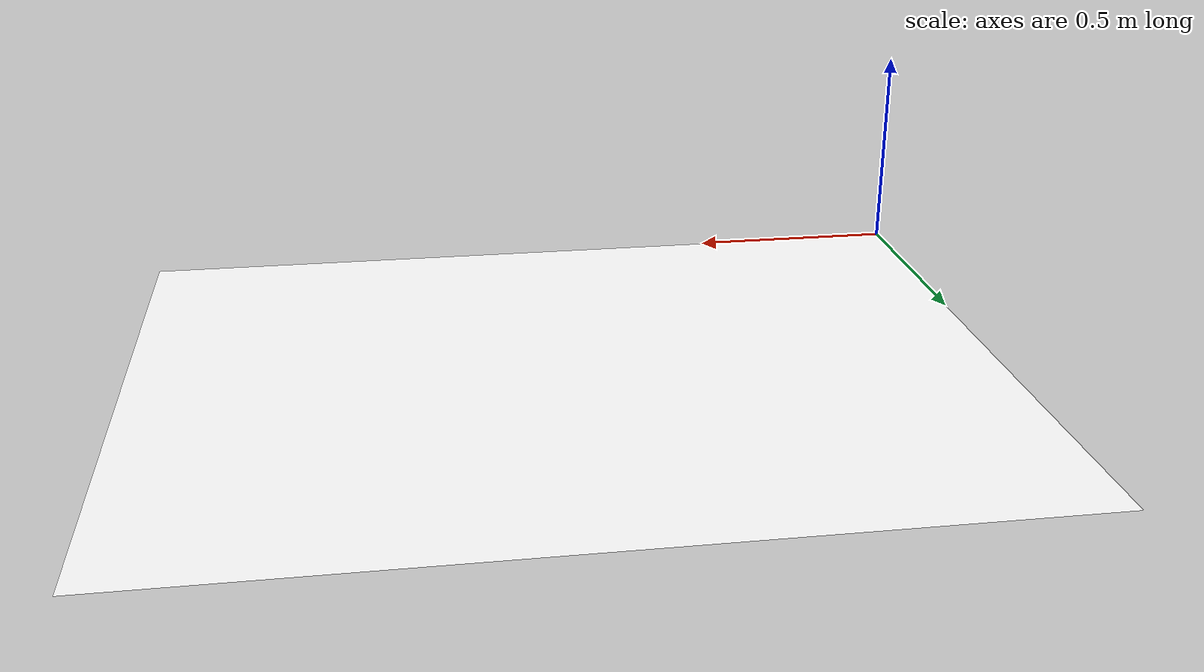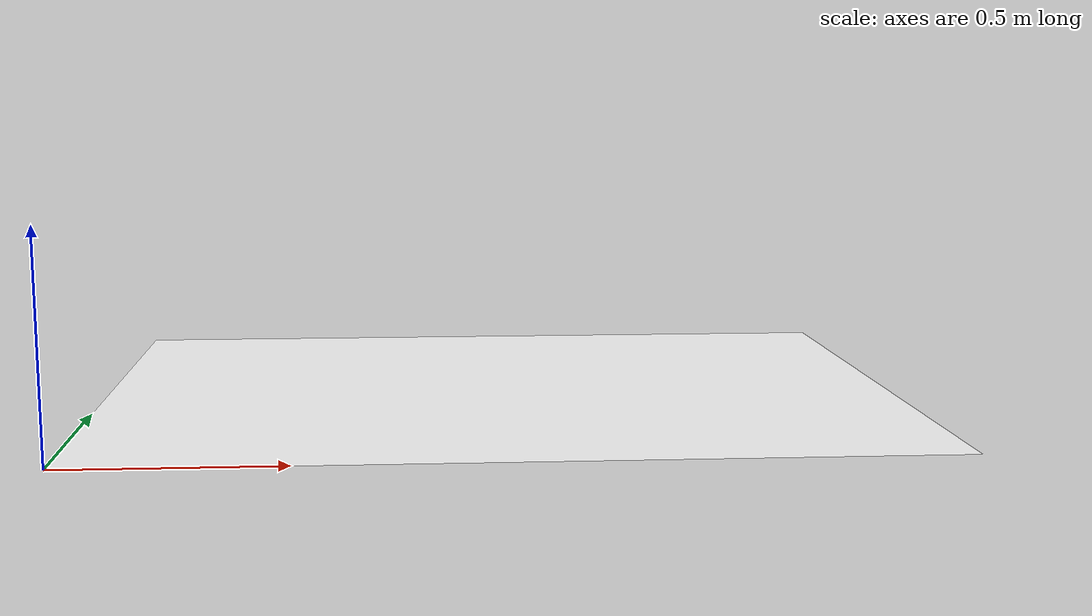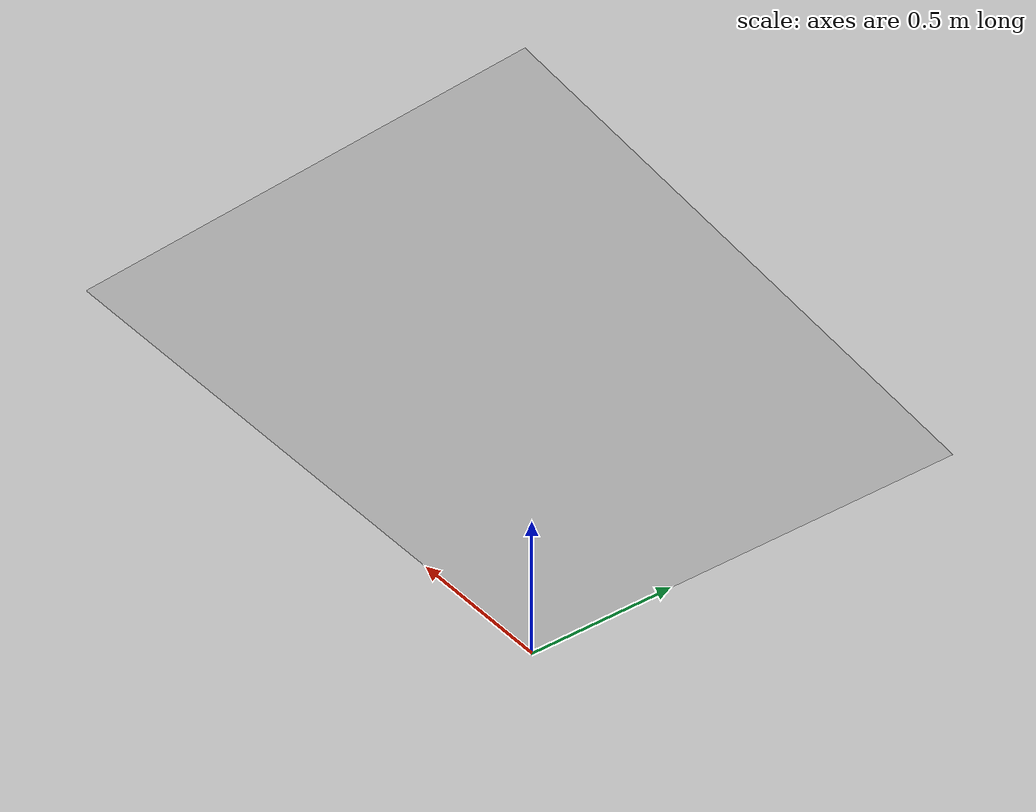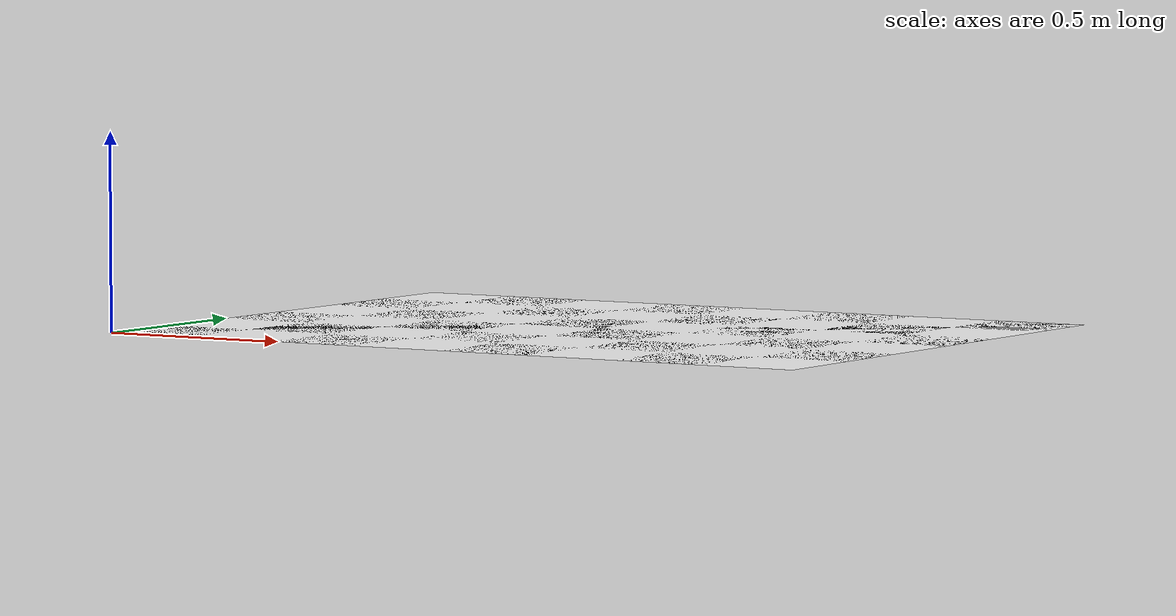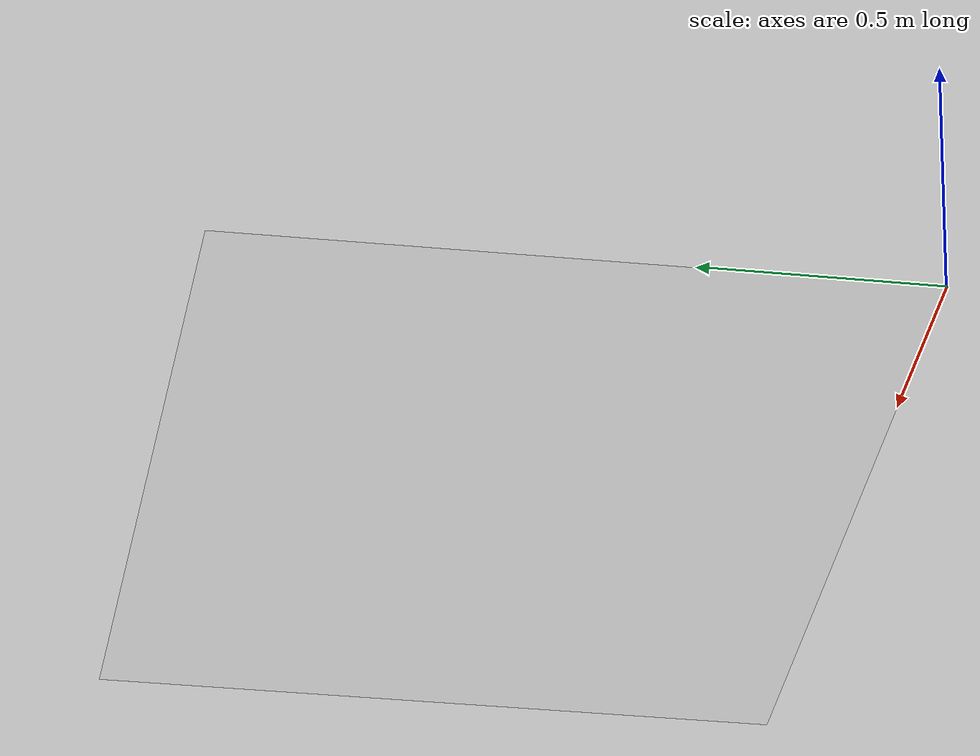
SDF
<?xml version="1.0" ?>
<sdf version="1.5">
  <model name="asym_chessboard">
    <link name="link">
      <pose>0 0 0 0 0 0</pose>
      <collision name="collision">
        <geometry>
          <mesh>
            <uri>model://asym_chessboard/meshes/asym_chessboard.dae</uri>
            <scale>1 1 1</scale>
          </mesh>
        </geometry>
      </collision>
      <visual name="visual">
        <geometry>
          <mesh>
            <uri>model://asym_chessboard/meshes/asym_chessboard.dae</uri>
            <scale>1 1 1</scale>
          </mesh>
        </geometry>
      </visual>
    </link>
  </model>
</sdf>
